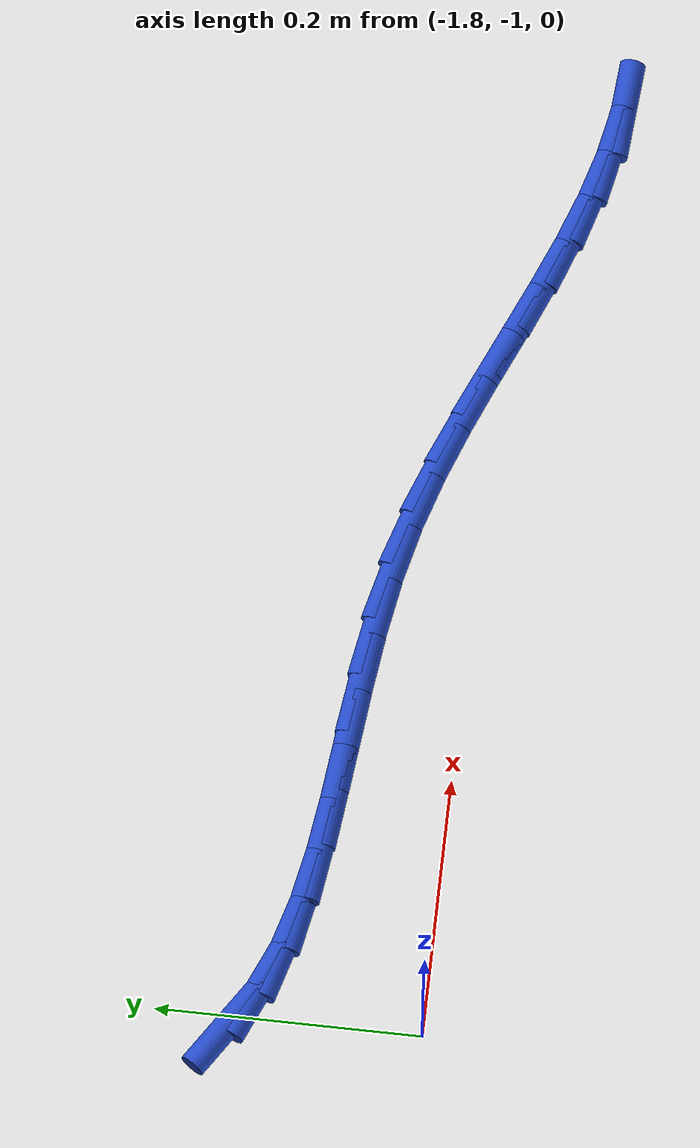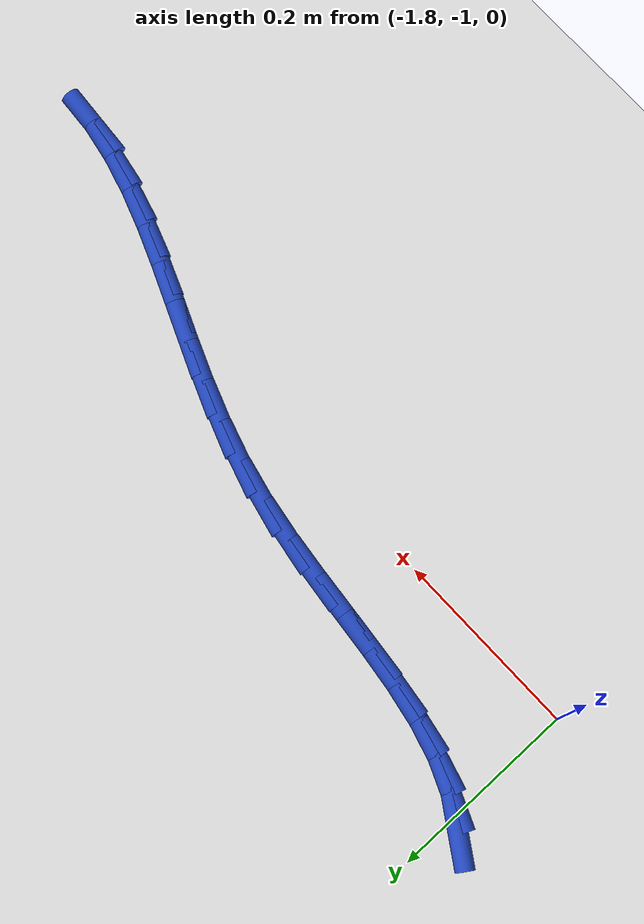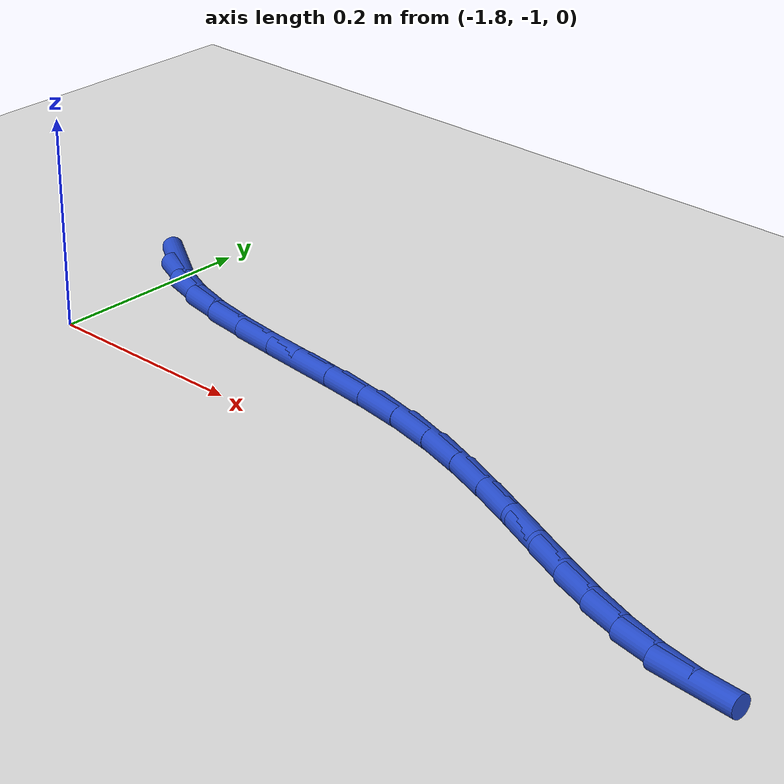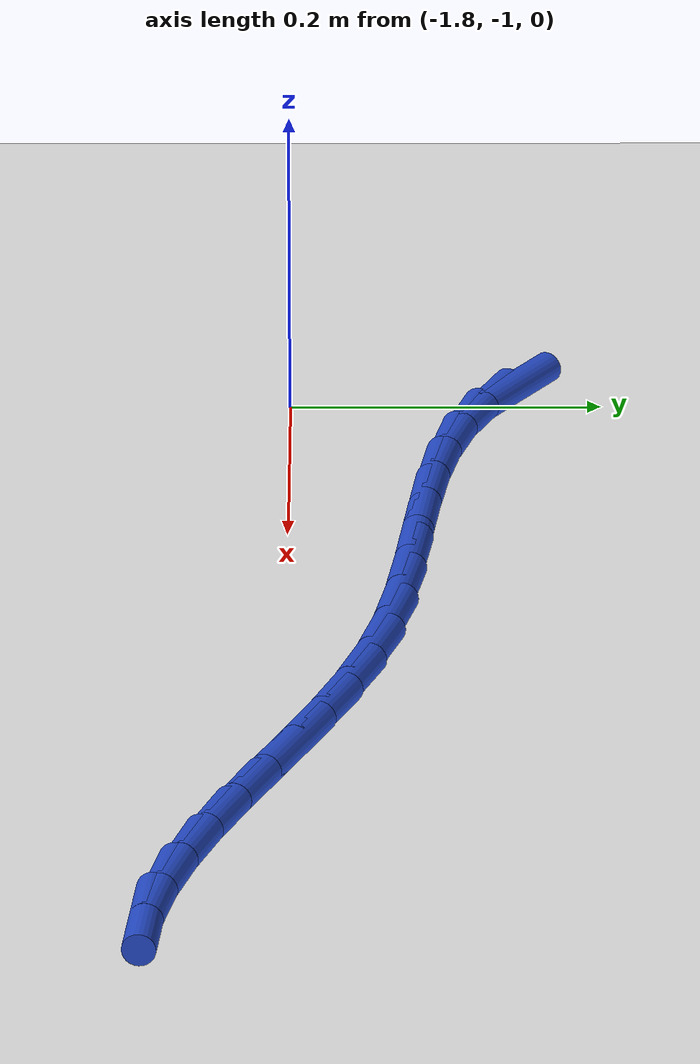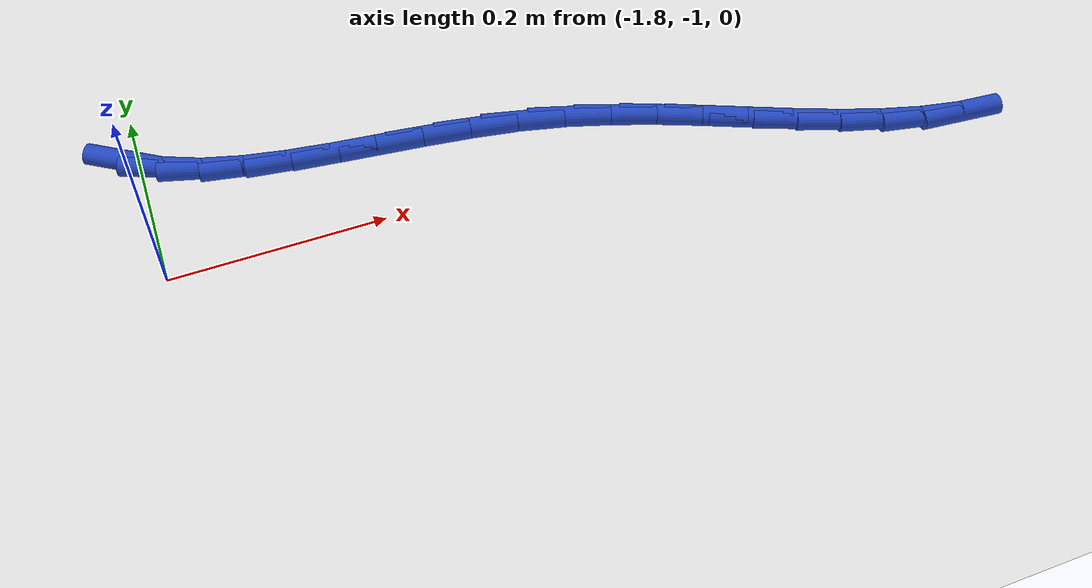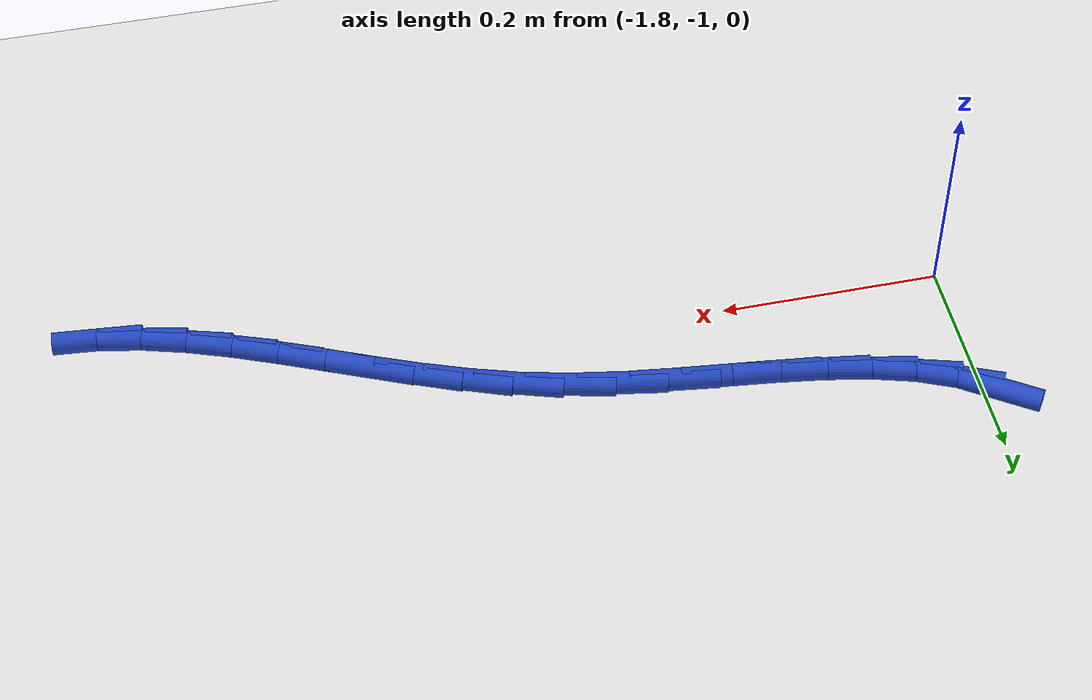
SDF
<sdf version="1.6">
 <world name="default">
  <model name="ground_plane">
   <static>1</static>
   <link name="link">
    <collision name="collision">
     <geometry><plane><normal>0 0 1</normal><size>100 100</size></plane></geometry>
     <surface><friction><ode><mu>100</mu><mu2>50</mu2></ode></friction></surface>
    </collision>
    <visual name="visual">
     <cast_shadows>0</cast_shadows>
     <geometry><plane><normal>0 0 1</normal><size>100 100</size></plane></geometry>
     <material>
      <script><uri>file://media/materials/scripts/gazebo.material</uri><name>Gazebo/WhiteGlow</name></script>
     </material>
    </visual>
   </link>
  </model>
  <model name="line">
   <link name="link_102">
    <pose>-1.809757932743235 -0.8555246850917286 0.01 0 1.57 -0.5831620273030915</pose>
    <collision name="collision">
     <geometry><cylinder><radius>0.01</radius><length>0.08</length></cylinder></geometry>
    </collision>
    <visual name="visual">
     <material>
      <script><name>Gazebo/Blue</name><uri>file://media/materials/scripts/gazebo.material</uri></script>
     </material>
     <geometry><cylinder><radius>0.01</radius><length>0.08</length></cylinder></geometry>
    </visual>
   </link>
   <link name="link_103">
    <pose>-1.7803534830282262 -0.8749227170518766 0.01 0 1.57 -0.40736396085930954</pose>
    <collision name="collision">
     <geometry><cylinder><radius>0.01</radius><length>0.08</length></cylinder></geometry>
    </collision>
    <visual name="visual">
     <material>
      <script><name>Gazebo/Blue</name><uri>file://media/materials/scripts/gazebo.material</uri></script>
     </material>
     <geometry><cylinder><radius>0.01</radius><length>0.08</length></cylinder></geometry>
    </visual>
   </link>
   <link name="link_104">
    <pose>-1.7465039748298221 -0.8895288064336293 0.01 0 1.57 -0.278954488942499</pose>
    <collision name="collision">
     <geometry><cylinder><radius>0.01</radius><length>0.08</length></cylinder></geometry>
    </collision>
    <visual name="visual">
     <material>
      <script><name>Gazebo/Blue</name><uri>file://media/materials/scripts/gazebo.material</uri></script>
     </material>
     <geometry><cylinder><radius>0.01</radius><length>0.08</length></cylinder></geometry>
    </visual>
   </link>
   <link name="link_105">
    <pose>-1.708918870199712 -0.9002940337243532 0.01 0 1.57 -0.19157370050662956</pose>
    <collision name="collision">
     <geometry><cylinder><radius>0.01</radius><length>0.08</length></cylinder></geometry>
    </collision>
    <visual name="visual">
     <material>
      <script><name>Gazebo/Blue</name><uri>file://media/materials/scripts/gazebo.material</uri></script>
     </material>
     <geometry><cylinder><radius>0.01</radius><length>0.08</length></cylinder></geometry>
    </visual>
   </link>
   <link name="link_106">
    <pose>-1.6683085380707507 -0.9081704985996664 0.01 0 1.57 -0.13750248488267683</pose>
    <collision name="collision">
     <geometry><cylinder><radius>0.01</radius><length>0.08</length></cylinder></geometry>
    </collision>
    <visual name="visual">
     <material>
      <script><name>Gazebo/Blue</name><uri>file://media/materials/scripts/gazebo.material</uri></script>
     </material>
     <geometry><cylinder><radius>0.01</radius><length>0.08</length></cylinder></geometry>
    </visual>
   </link>
   <link name="link_107">
    <pose>-1.6253833473757948 -0.9141103007351867 0.01 0 1.57 -0.11082352039652145</pose>
    <collision name="collision">
     <geometry><cylinder><radius>0.01</radius><length>0.08</length></cylinder></geometry>
    </collision>
    <visual name="visual">
     <material>
      <script><name>Gazebo/Blue</name><uri>file://media/materials/scripts/gazebo.material</uri></script>
     </material>
     <geometry><cylinder><radius>0.01</radius><length>0.08</length></cylinder></geometry>
    </visual>
   </link>
   <link name="link_108">
    <pose>-1.5808536670477005 -0.9190655398065337 0.01 0 1.57 -0.10795304630717016</pose>
    <collision name="collision">
     <geometry><cylinder><radius>0.01</radius><length>0.08</length></cylinder></geometry>
    </collision>
    <visual name="visual">
     <material>
      <script><name>Gazebo/Blue</name><uri>file://media/materials/scripts/gazebo.material</uri></script>
     </material>
     <geometry><cylinder><radius>0.01</radius><length>0.08</length></cylinder></geometry>
    </visual>
   </link>
   <link name="link_109">
    <pose>-1.5354298660193222 -0.9239883154893255 0.01 0 1.57 -0.12740795055910312</pose>
    <collision name="collision">
     <geometry><cylinder><radius>0.01</radius><length>0.08</length></cylinder></geometry>
    </collision>
    <visual name="visual">
     <material>
      <script><name>Gazebo/Blue</name><uri>file://media/materials/scripts/gazebo.material</uri></script>
     </material>
     <geometry><cylinder><radius>0.01</radius><length>0.08</length></cylinder></geometry>
    </visual>
   </link>
   <link name="link_110">
    <pose>-1.4898223132235162 -0.9298307274591804 0.01 0 1.57 -0.16947630315162385</pose>
    <collision name="collision">
     <geometry><cylinder><radius>0.01</radius><length>0.08</length></cylinder></geometry>
    </collision>
    <visual name="visual">
     <material>
      <script><name>Gazebo/Blue</name><uri>file://media/materials/scripts/gazebo.material</uri></script>
     </material>
     <geometry><cylinder><radius>0.01</radius><length>0.08</length></cylinder></geometry>
    </visual>
   </link>
   <link name="link_111">
    <pose>-1.4447413775931368 -0.9375448753917173 0.01 0 1.57 -0.23479865198508632</pose>
    <collision name="collision">
     <geometry><cylinder><radius>0.01</radius><length>0.08</length></cylinder></geometry>
    </collision>
    <visual name="visual">
     <material>
      <script><name>Gazebo/Blue</name><uri>file://media/materials/scripts/gazebo.material</uri></script>
     </material>
     <geometry><cylinder><radius>0.01</radius><length>0.08</length></cylinder></geometry>
    </visual>
   </link>
   <link name="link_112">
    <pose>-1.400873659432549 -0.9480385083972293 0.01 0 1.57 -0.30390604094065304</pose>
    <collision name="collision">
     <geometry><cylinder><radius>0.01</radius><length>0.08</length></cylinder></geometry>
    </collision>
    <visual name="visual">
     <material>
      <script><name>Gazebo/Blue</name><uri>file://media/materials/scripts/gazebo.material</uri></script>
     </material>
     <geometry><cylinder><radius>0.01</radius><length>0.08</length></cylinder></geometry>
    </visual>
   </link>
   <link name="link_113">
    <pose>-1.358438303997914 -0.96134713781014 0.01 0 1.57 -0.35680606573512624</pose>
    <collision name="collision">
     <geometry><cylinder><radius>0.01</radius><length>0.08</length></cylinder></geometry>
    </collision>
    <visual name="visual">
     <material>
      <script><name>Gazebo/Blue</name><uri>file://media/materials/scripts/gazebo.material</uri></script>
     </material>
     <geometry><cylinder><radius>0.01</radius><length>0.08</length></cylinder></geometry>
    </visual>
   </link>
   <link name="link_114">
    <pose>-1.3172271892489336 -0.976709024667114 0.01 0 1.57 -0.3920253638327292</pose>
    <collision name="collision">
     <geometry><cylinder><radius>0.01</radius><length>0.08</length></cylinder></geometry>
    </collision>
    <visual name="visual">
     <material>
      <script><name>Gazebo/Blue</name><uri>file://media/materials/scripts/gazebo.material</uri></script>
     </material>
     <geometry><cylinder><radius>0.01</radius><length>0.08</length></cylinder></geometry>
    </visual>
   </link>
   <link name="link_115">
    <pose>-1.277016482433174 -0.993333114936635 0.01 0 1.57 -0.4090597424378127</pose>
    <collision name="collision">
     <geometry><cylinder><radius>0.01</radius><length>0.08</length></cylinder></geometry>
    </collision>
    <visual name="visual">
     <material>
      <script><name>Gazebo/Blue</name><uri>file://media/materials/scripts/gazebo.material</uri></script>
     </material>
     <geometry><cylinder><radius>0.01</radius><length>0.08</length></cylinder></geometry>
    </visual>
   </link>
   <link name="link_116">
    <pose>-1.2375823507982004 -1.0104283545871853 0.01 0 1.57 -0.4073202706632018</pose>
    <collision name="collision">
     <geometry><cylinder><radius>0.01</radius><length>0.08</length></cylinder></geometry>
    </collision>
    <visual name="visual">
     <material>
      <script><name>Gazebo/Blue</name><uri>file://media/materials/scripts/gazebo.material</uri></script>
     </material>
     <geometry><cylinder><radius>0.01</radius><length>0.08</length></cylinder></geometry>
    </visual>
   </link>
   <link name="link_117">
    <pose>-1.1987009615915807 -1.0272036895872476 0.01 0 1.57 -0.3859368038165464</pose>
    <collision name="collision">
     <geometry><cylinder><radius>0.01</radius><length>0.08</length></cylinder></geometry>
    </collision>
    <visual name="visual">
     <material>
      <script><name>Gazebo/Blue</name><uri>file://media/materials/scripts/gazebo.material</uri></script>
     </material>
     <geometry><cylinder><radius>0.01</radius><length>0.08</length></cylinder></geometry>
    </visual>
   </link>
   <link name="link_118">
    <pose>-1.1601484820608807 -1.042868065905305 0.01 0 1.57 -0.3437422652173506</pose>
    <collision name="collision">
     <geometry><cylinder><radius>0.01</radius><length>0.08</length></cylinder></geometry>
    </collision>
    <visual name="visual">
     <material>
      <script><name>Gazebo/Blue</name><uri>file://media/materials/scripts/gazebo.material</uri></script>
     </material>
     <geometry><cylinder><radius>0.01</radius><length>0.08</length></cylinder></geometry>
    </visual>
   </link>
   <link name="link_119">
    <pose>-1.1217010794536664 -1.0566304295098403 0.01 0 1.57 -0.2795073239016449</pose>
    <collision name="collision">
     <geometry><cylinder><radius>0.01</radius><length>0.08</length></cylinder></geometry>
    </collision>
    <visual name="visual">
     <material>
      <script><name>Gazebo/Blue</name><uri>file://media/materials/scripts/gazebo.material</uri></script>
     </material>
     <geometry><cylinder><radius>0.01</radius><length>0.08</length></cylinder></geometry>
    </visual>
   </link>
   <link name="link_120">
    <pose>-1.0831349210175047 -1.0676997263693366 0.01 0 1.57 -0.1925330250904574</pose>
    <collision name="collision">
     <geometry><cylinder><radius>0.01</radius><length>0.08</length></cylinder></geometry>
    </collision>
    <visual name="visual">
     <material>
      <script><name>Gazebo/Blue</name><uri>file://media/materials/scripts/gazebo.material</uri></script>
     </material>
     <geometry><cylinder><radius>0.01</radius><length>0.08</length></cylinder></geometry>
    </visual>
   </link>
   <link name="link_121">
    <pose>-1.0442261739999605 -1.0752849024522768 0.01 0 1.57 -0.08368357750295374</pose>
    <collision name="collision">
     <geometry><cylinder><radius>0.01</radius><length>0.08</length></cylinder></geometry>
    </collision>
    <visual name="visual">
     <material>
      <script><name>Gazebo/Blue</name><uri>file://media/materials/scripts/gazebo.material</uri></script>
     </material>
     <geometry><cylinder><radius>0.01</radius><length>0.08</length></cylinder></geometry>
    </visual>
   </link>
  </model>
 </world>
</sdf>
